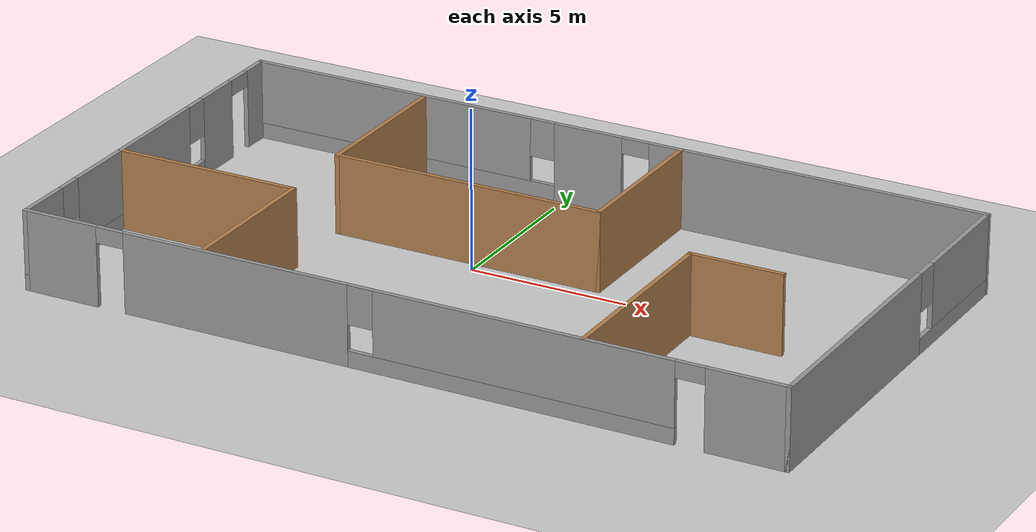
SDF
<sdf version="1.6">
 <world name="default">
  <model name="ground_plane">
   <static>1</static>
   <link name="link">
    <collision name="collision">
     <geometry><plane><normal>0 0 1</normal><size>100 100</size></plane></geometry>
     <surface>
      <contact><collide_bitmask>65535</collide_bitmask></contact>
      <friction><ode><mu>100</mu><mu2>50</mu2></ode></friction>
     </surface>
    </collision>
    <visual name="visual">
     <cast_shadows>0</cast_shadows>
     <geometry><plane><normal>0 0 1</normal><size>100 100</size></plane></geometry>
     <material>
      <script><uri>file://media/materials/scripts/gazebo.material</uri><name>Gazebo/Grey</name></script>
     </material>
    </visual>
   </link>
  </model>
  <model name="building">
   <pose>1.60005 -0.875403 0 0 -0 0</pose>
   <link name="Wall_0">
    <pose>-12.05 0 0 0 0 -1.5708</pose>
    <visual name="Wall_0_Visual_0">
     <pose>-6.00515 0 1.25 0 -0 0</pose>
     <geometry><box><size>0.989706 0.15 2.5</size></box></geometry>
     <material>
      <script><uri>file://media/materials/scripts/gazebo.material</uri><name>Gazebo/Grey</name></script>
      <ambient>0.0823529 0.0823529 0.0823529 1</ambient>
     </material>
     <meta><layer>0</layer></meta>
    </visual>
    <collision name="Wall_0_Collision_0">
     <geometry><box><size>0.989706 0.15 2.5</size></box></geometry>
     <pose>-6.00515 0 1.25 0 -0 0</pose>
    </collision>
    <visual name="Wall_0_Visual_1">
     <pose>-3.80937 0 1.25 0 -0 0</pose>
     <geometry><box><size>1.60184 0.15 2.5</size></box></geometry>
     <material>
      <script><uri>file://media/materials/scripts/gazebo.material</uri><name>Gazebo/Grey</name></script>
      <ambient>0.0823529 0.0823529 0.0823529 1</ambient>
     </material>
     <meta><layer>0</layer></meta>
    </visual>
    <collision name="Wall_0_Collision_1">
     <geometry><box><size>1.60184 0.15 2.5</size></box></geometry>
     <pose>-3.80937 0 1.25 0 -0 0</pose>
    </collision>
    <visual name="Wall_0_Visual_2">
     <pose>1.74578 0 0.25 0 -0 0</pose>
     <geometry><box><size>9.50845 0.15 0.5</size></box></geometry>
     <material>
      <script><uri>file://media/materials/scripts/gazebo.material</uri><name>Gazebo/Grey</name></script>
      <ambient>0.0823529 0.0823529 0.0823529 1</ambient>
     </material>
     <meta><layer>0</layer></meta>
    </visual>
    <collision name="Wall_0_Collision_2">
     <geometry><box><size>9.50845 0.15 0.5</size></box></geometry>
     <pose>1.74578 0 0.25 0 -0 0</pose>
    </collision>
    <visual name="Wall_0_Visual_3">
     <pose>0.81488 0 1.5 0 -0 0</pose>
     <geometry><box><size>6.04666 0.15 2</size></box></geometry>
     <material>
      <script><uri>file://media/materials/scripts/gazebo.material</uri><name>Gazebo/Grey</name></script>
      <ambient>0.0823529 0.0823529 0.0823529 1</ambient>
     </material>
     <meta><layer>0</layer></meta>
    </visual>
    <collision name="Wall_0_Collision_3">
     <geometry><box><size>6.04666 0.15 2</size></box></geometry>
     <pose>0.81488 0 1.5 0 -0 0</pose>
    </collision>
    <visual name="Wall_0_Visual_4">
     <pose>5.56911 0 1.5 0 -0 0</pose>
     <geometry><box><size>1.86179 0.15 2</size></box></geometry>
     <material>
      <script><uri>file://media/materials/scripts/gazebo.material</uri><name>Gazebo/Grey</name></script>
      <ambient>0.0823529 0.0823529 0.0823529 1</ambient>
     </material>
     <meta><layer>0</layer></meta>
    </visual>
    <collision name="Wall_0_Collision_4">
     <geometry><box><size>1.86179 0.15 2</size></box></geometry>
     <pose>5.56911 0 1.5 0 -0 0</pose>
    </collision>
    <visual name="Wall_0_Visual_5">
     <pose>-2.60845 0 1.9 0 -0 0</pose>
     <geometry><box><size>0.8 0.15 1.2</size></box></geometry>
     <material>
      <script><uri>file://media/materials/scripts/gazebo.material</uri><name>Gazebo/Grey</name></script>
      <ambient>0.0823529 0.0823529 0.0823529 1</ambient>
     </material>
     <meta><layer>0</layer></meta>
    </visual>
    <collision name="Wall_0_Collision_5">
     <geometry><box><size>0.8 0.15 1.2</size></box></geometry>
     <pose>-2.60845 0 1.9 0 -0 0</pose>
    </collision>
    <visual name="Wall_0_Visual_6">
     <pose>4.23821 0 1.9 0 -0 0</pose>
     <geometry><box><size>0.8 0.15 1.2</size></box></geometry>
     <material>
      <script><uri>file://media/materials/scripts/gazebo.material</uri><name>Gazebo/Grey</name></script>
      <ambient>0.0823529 0.0823529 0.0823529 1</ambient>
     </material>
     <meta><layer>0</layer></meta>
    </visual>
    <collision name="Wall_0_Collision_6">
     <geometry><box><size>0.8 0.15 1.2</size></box></geometry>
     <pose>4.23821 0 1.9 0 -0 0</pose>
    </collision>
    <visual name="Wall_0_Visual_7">
     <pose>-5.06029 0 2.25 0 -0 0</pose>
     <geometry><box><size>0.9 0.15 0.5</size></box></geometry>
     <material>
      <script><uri>file://media/materials/scripts/gazebo.material</uri><name>Gazebo/Grey</name></script>
      <ambient>0.0823529 0.0823529 0.0823529 1</ambient>
     </material>
     <meta><layer>0</layer></meta>
    </visual>
    <collision name="Wall_0_Collision_7">
     <geometry><box><size>0.9 0.15 0.5</size></box></geometry>
     <pose>-5.06029 0 2.25 0 -0 0</pose>
    </collision>
   </link>
   <link name="Wall_1">
    <pose>0 -6.425 0 0 -0 0</pose>
    <visual name="Wall_1_Visual_0">
     <pose>-10.89 0 1.25 0 -0 0</pose>
     <geometry><box><size>2.47006 0.15 2.5</size></box></geometry>
     <material>
      <script><uri>file://media/materials/scripts/gazebo.material</uri><name>Gazebo/Grey</name></script>
      <ambient>0.0823529 0.0823529 0.0823529 1</ambient>
     </material>
     <meta><layer>0</layer></meta>
    </visual>
    <collision name="Wall_1_Collision_0">
     <geometry><box><size>2.47006 0.15 2.5</size></box></geometry>
     <pose>-10.89 0 1.25 0 -0 0</pose>
    </collision>
    <visual name="Wall_1_Visual_1">
     <pose>-5.09738 0 1.25 0 -0 0</pose>
     <geometry><box><size>7.3151 0.15 2.5</size></box></geometry>
     <material>
      <script><uri>file://media/materials/scripts/gazebo.material</uri><name>Gazebo/Grey</name></script>
      <ambient>0.0823529 0.0823529 0.0823529 1</ambient>
     </material>
     <meta><layer>0</layer></meta>
    </visual>
    <collision name="Wall_1_Collision_1">
     <geometry><box><size>7.3151 0.15 2.5</size></box></geometry>
     <pose>-5.09738 0 1.25 0 -0 0</pose>
    </collision>
    <visual name="Wall_1_Visual_2">
     <pose>10.8563 0 1.25 0 -0 0</pose>
     <geometry><box><size>2.53736 0.15 2.5</size></box></geometry>
     <material>
      <script><uri>file://media/materials/scripts/gazebo.material</uri><name>Gazebo/Grey</name></script>
      <ambient>0.0823529 0.0823529 0.0823529 1</ambient>
     </material>
     <meta><layer>0</layer></meta>
    </visual>
    <collision name="Wall_1_Collision_2">
     <geometry><box><size>2.53736 0.15 2.5</size></box></geometry>
     <pose>10.8563 0 1.25 0 -0 0</pose>
    </collision>
    <visual name="Wall_1_Visual_3">
     <pose>3.6239 0 0.25 0 -0 0</pose>
     <geometry><box><size>10.1275 0.15 0.5</size></box></geometry>
     <material>
      <script><uri>file://media/materials/scripts/gazebo.material</uri><name>Gazebo/Grey</name></script>
      <ambient>0.0823529 0.0823529 0.0823529 1</ambient>
     </material>
     <meta><layer>0</layer></meta>
    </visual>
    <collision name="Wall_1_Collision_3">
     <geometry><box><size>10.1275 0.15 0.5</size></box></geometry>
     <pose>3.6239 0 0.25 0 -0 0</pose>
    </collision>
    <visual name="Wall_1_Visual_4">
     <pose>4.0239 0 1.5 0 -0 0</pose>
     <geometry><box><size>9.32747 0.15 2</size></box></geometry>
     <material>
      <script><uri>file://media/materials/scripts/gazebo.material</uri><name>Gazebo/Grey</name></script>
      <ambient>0.0823529 0.0823529 0.0823529 1</ambient>
     </material>
     <meta><layer>0</layer></meta>
    </visual>
    <collision name="Wall_1_Collision_4">
     <geometry><box><size>9.32747 0.15 2</size></box></geometry>
     <pose>4.0239 0 1.5 0 -0 0</pose>
    </collision>
    <visual name="Wall_1_Visual_5">
     <pose>-1.03983 0 1.9 0 -0 0</pose>
     <geometry><box><size>0.8 0.15 1.2</size></box></geometry>
     <material>
      <script><uri>file://media/materials/scripts/gazebo.material</uri><name>Gazebo/Grey</name></script>
      <ambient>0.0823529 0.0823529 0.0823529 1</ambient>
     </material>
     <meta><layer>0</layer></meta>
    </visual>
    <collision name="Wall_1_Collision_5">
     <geometry><box><size>0.8 0.15 1.2</size></box></geometry>
     <pose>-1.03983 0 1.9 0 -0 0</pose>
    </collision>
    <visual name="Wall_1_Visual_6">
     <pose>-9.20494 0 2.25 0 -0 0</pose>
     <geometry><box><size>0.9 0.15 0.5</size></box></geometry>
     <material>
      <script><uri>file://media/materials/scripts/gazebo.material</uri><name>Gazebo/Grey</name></script>
      <ambient>0.0823529 0.0823529 0.0823529 1</ambient>
     </material>
     <meta><layer>0</layer></meta>
    </visual>
    <collision name="Wall_1_Collision_6">
     <geometry><box><size>0.9 0.15 0.5</size></box></geometry>
     <pose>-9.20494 0 2.25 0 -0 0</pose>
    </collision>
    <visual name="Wall_1_Visual_7">
     <pose>9.13764 0 2.25 0 -0 0</pose>
     <geometry><box><size>0.9 0.15 0.5</size></box></geometry>
     <material>
      <script><uri>file://media/materials/scripts/gazebo.material</uri><name>Gazebo/Grey</name></script>
      <ambient>0.0823529 0.0823529 0.0823529 1</ambient>
     </material>
     <meta><layer>0</layer></meta>
    </visual>
    <collision name="Wall_1_Collision_7">
     <geometry><box><size>0.9 0.15 0.5</size></box></geometry>
     <pose>9.13764 0 2.25 0 -0 0</pose>
    </collision>
   </link>
   <link name="Wall_10">
    <collision name="Wall_10_Collision">
     <geometry><box><size>3 0.15 2.5</size></box></geometry>
     <pose>0 0 1.25 0 -0 0</pose>
    </collision>
    <visual name="Wall_10_Visual">
     <pose>0 0 1.25 0 -0 0</pose>
     <geometry><box><size>3 0.15 2.5</size></box></geometry>
     <material>
      <script><uri>file://media/materials/scripts/gazebo.material</uri><name>Gazebo/Wood</name></script>
      <ambient>1 1 1 1</ambient>
     </material>
     <meta><layer>0</layer></meta>
    </visual>
    <pose>7.30122 -0.039357 0 0 -0 0</pose>
   </link>
   <link name="Wall_12">
    <collision name="Wall_12_Collision">
     <geometry><box><size>6 0.15 2.5</size></box></geometry>
     <pose>0 0 1.25 0 -0 0</pose>
    </collision>
    <visual name="Wall_12_Visual">
     <pose>0 0 1.25 0 -0 0</pose>
     <geometry><box><size>6 0.15 2.5</size></box></geometry>
     <material>
      <script><uri>file://media/materials/scripts/gazebo.material</uri><name>Gazebo/Wood</name></script>
      <ambient>1 1 1 1</ambient>
     </material>
     <meta><layer>0</layer></meta>
    </visual>
    <pose>-9.10187 -1.46254 0 0 -0 0</pose>
   </link>
   <link name="Wall_13">
    <collision name="Wall_13_Collision">
     <geometry><box><size>5 0.15 2.5</size></box></geometry>
     <pose>0 0 1.25 0 -0 0</pose>
    </collision>
    <visual name="Wall_13_Visual">
     <pose>0 0 1.25 0 -0 0</pose>
     <geometry><box><size>5 0.15 2.5</size></box></geometry>
     <material>
      <script><uri>file://media/materials/scripts/gazebo.material</uri><name>Gazebo/Wood</name></script>
      <ambient>1 1 1 1</ambient>
     </material>
     <meta><layer>0</layer></meta>
    </visual>
    <pose>-6.17687 -3.88754 0 0 0 -1.5708</pose>
   </link>
   <link name="Wall_2">
    <pose>12.05 0 0 0 -0 1.5708</pose>
    <visual name="Wall_2_Visual_0">
     <pose>-2.35395 0 1.25 0 -0 0</pose>
     <geometry><box><size>8.2921 0.15 2.5</size></box></geometry>
     <material>
      <script><uri>file://media/materials/scripts/gazebo.material</uri><name>Gazebo/Grey</name></script>
      <ambient>0.0823529 0.0823529 0.0823529 1</ambient>
     </material>
     <meta><layer>0</layer></meta>
    </visual>
    <collision name="Wall_2_Collision_0">
     <geometry><box><size>8.2921 0.15 2.5</size></box></geometry>
     <pose>-2.35395 0 1.25 0 -0 0</pose>
    </collision>
    <visual name="Wall_2_Visual_1">
     <pose>4.14605 0 0.25 0 -0 0</pose>
     <geometry><box><size>4.7079 0.15 0.5</size></box></geometry>
     <material>
      <script><uri>file://media/materials/scripts/gazebo.material</uri><name>Gazebo/Grey</name></script>
      <ambient>0.0823529 0.0823529 0.0823529 1</ambient>
     </material>
     <meta><layer>0</layer></meta>
    </visual>
    <collision name="Wall_2_Collision_1">
     <geometry><box><size>4.7079 0.15 0.5</size></box></geometry>
     <pose>4.14605 0 0.25 0 -0 0</pose>
    </collision>
    <visual name="Wall_2_Visual_2">
     <pose>4.54605 0 1.5 0 -0 0</pose>
     <geometry><box><size>3.9079 0.15 2</size></box></geometry>
     <material>
      <script><uri>file://media/materials/scripts/gazebo.material</uri><name>Gazebo/Grey</name></script>
      <ambient>0.0823529 0.0823529 0.0823529 1</ambient>
     </material>
     <meta><layer>0</layer></meta>
    </visual>
    <collision name="Wall_2_Collision_2">
     <geometry><box><size>3.9079 0.15 2</size></box></geometry>
     <pose>4.54605 0 1.5 0 -0 0</pose>
    </collision>
    <visual name="Wall_2_Visual_3">
     <pose>2.1921 0 1.9 0 -0 0</pose>
     <geometry><box><size>0.8 0.15 1.2</size></box></geometry>
     <material>
      <script><uri>file://media/materials/scripts/gazebo.material</uri><name>Gazebo/Grey</name></script>
      <ambient>0.0823529 0.0823529 0.0823529 1</ambient>
     </material>
     <meta><layer>0</layer></meta>
    </visual>
    <collision name="Wall_2_Collision_3">
     <geometry><box><size>0.8 0.15 1.2</size></box></geometry>
     <pose>2.1921 0 1.9 0 -0 0</pose>
    </collision>
   </link>
   <link name="Wall_3">
    <pose>0 6.425 0 0 -0 3.14159</pose>
    <visual name="Wall_3_Visual_0">
     <pose>-6.70437 0 1.25 0 -0 0</pose>
     <geometry><box><size>10.8413 0.15 2.5</size></box></geometry>
     <material>
      <script><uri>file://media/materials/scripts/gazebo.material</uri><name>Gazebo/Grey</name></script>
      <ambient>0.0823529 0.0823529 0.0823529 1</ambient>
     </material>
     <meta><layer>0</layer></meta>
    </visual>
    <collision name="Wall_3_Collision_0">
     <geometry><box><size>10.8413 0.15 2.5</size></box></geometry>
     <pose>-6.70437 0 1.25 0 -0 0</pose>
    </collision>
    <visual name="Wall_3_Visual_1">
     <pose>0.741002 0 1.25 0 -0 0</pose>
     <geometry><box><size>2.2495 0.15 2.5</size></box></geometry>
     <material>
      <script><uri>file://media/materials/scripts/gazebo.material</uri><name>Gazebo/Grey</name></script>
      <ambient>0.0823529 0.0823529 0.0823529 1</ambient>
     </material>
     <meta><layer>0</layer></meta>
    </visual>
    <collision name="Wall_3_Collision_1">
     <geometry><box><size>2.2495 0.15 2.5</size></box></geometry>
     <pose>0.741002 0 1.25 0 -0 0</pose>
    </collision>
    <visual name="Wall_3_Visual_2">
     <pose>6.99538 0 0.25 0 -0 0</pose>
     <geometry><box><size>10.2592 0.15 0.5</size></box></geometry>
     <material>
      <script><uri>file://media/materials/scripts/gazebo.material</uri><name>Gazebo/Grey</name></script>
      <ambient>0.0823529 0.0823529 0.0823529 1</ambient>
     </material>
     <meta><layer>0</layer></meta>
    </visual>
    <collision name="Wall_3_Collision_2">
     <geometry><box><size>10.2592 0.15 0.5</size></box></geometry>
     <pose>6.99538 0 0.25 0 -0 0</pose>
    </collision>
    <visual name="Wall_3_Visual_3">
     <pose>7.39538 0 1.5 0 -0 0</pose>
     <geometry><box><size>9.45925 0.15 2</size></box></geometry>
     <material>
      <script><uri>file://media/materials/scripts/gazebo.material</uri><name>Gazebo/Grey</name></script>
      <ambient>0.0823529 0.0823529 0.0823529 1</ambient>
     </material>
     <meta><layer>0</layer></meta>
    </visual>
    <collision name="Wall_3_Collision_3">
     <geometry><box><size>9.45925 0.15 2</size></box></geometry>
     <pose>7.39538 0 1.5 0 -0 0</pose>
    </collision>
    <visual name="Wall_3_Visual_4">
     <pose>2.26575 0 1.9 0 -0 0</pose>
     <geometry><box><size>0.8 0.15 1.2</size></box></geometry>
     <material>
      <script><uri>file://media/materials/scripts/gazebo.material</uri><name>Gazebo/Grey</name></script>
      <ambient>0.0823529 0.0823529 0.0823529 1</ambient>
     </material>
     <meta><layer>0</layer></meta>
    </visual>
    <collision name="Wall_3_Collision_4">
     <geometry><box><size>0.8 0.15 1.2</size></box></geometry>
     <pose>2.26575 0 1.9 0 -0 0</pose>
    </collision>
    <visual name="Wall_3_Visual_5">
     <pose>-0.833748 0 2.25 0 -0 0</pose>
     <geometry><box><size>0.9 0.15 0.5</size></box></geometry>
     <material>
      <script><uri>file://media/materials/scripts/gazebo.material</uri><name>Gazebo/Grey</name></script>
      <ambient>0.0823529 0.0823529 0.0823529 1</ambient>
     </material>
     <meta><layer>0</layer></meta>
    </visual>
    <collision name="Wall_3_Collision_5">
     <geometry><box><size>0.9 0.15 0.5</size></box></geometry>
     <pose>-0.833748 0 2.25 0 -0 0</pose>
    </collision>
   </link>
   <link name="Wall_5">
    <collision name="Wall_5_Collision">
     <geometry><box><size>5.25 0.15 2.5</size></box></geometry>
     <pose>0 0 1.25 0 -0 0</pose>
    </collision>
    <visual name="Wall_5_Visual">
     <pose>0 0 1.25 0 -0 0</pose>
     <geometry><box><size>5.25 0.15 2.5</size></box></geometry>
     <material>
      <script><uri>file://media/materials/scripts/gazebo.material</uri><name>Gazebo/Wood</name></script>
      <ambient>1 1 1 1</ambient>
     </material>
     <meta><layer>0</layer></meta>
    </visual>
    <pose>-6.29048 3.82874 0 0 0 -1.5708</pose>
   </link>
   <link name="Wall_6">
    <collision name="Wall_6_Collision">
     <geometry><box><size>8.75 0.15 2.5</size></box></geometry>
     <pose>0 0 1.25 0 -0 0</pose>
    </collision>
    <visual name="Wall_6_Visual">
     <pose>0 0 1.25 0 -0 0</pose>
     <geometry><box><size>8.75 0.15 2.5</size></box></geometry>
     <material>
      <script><uri>file://media/materials/scripts/gazebo.material</uri><name>Gazebo/Wood</name></script>
      <ambient>1 1 1 1</ambient>
     </material>
     <meta><layer>0</layer></meta>
    </visual>
    <pose>-1.99048 1.27874 0 0 -0 0</pose>
   </link>
   <link name="Wall_7">
    <collision name="Wall_7_Collision">
     <geometry><box><size>5.25 0.15 2.5</size></box></geometry>
     <pose>0 0 1.25 0 -0 0</pose>
    </collision>
    <visual name="Wall_7_Visual">
     <pose>0 0 1.25 0 -0 0</pose>
     <geometry><box><size>5.25 0.15 2.5</size></box></geometry>
     <material>
      <script><uri>file://media/materials/scripts/gazebo.material</uri><name>Gazebo/Wood</name></script>
      <ambient>1 1 1 1</ambient>
     </material>
     <meta><layer>0</layer></meta>
    </visual>
    <pose>2.30952 3.82874 0 0 -0 1.5708</pose>
   </link>
   <link name="Wall_9">
    <collision name="Wall_9_Collision">
     <geometry><box><size>6.5 0.15 2.5</size></box></geometry>
     <pose>0 0 1.25 0 -0 0</pose>
    </collision>
    <visual name="Wall_9_Visual">
     <pose>0 0 1.25 0 -0 0</pose>
     <geometry><box><size>6.5 0.15 2.5</size></box></geometry>
     <material>
      <script><uri>file://media/materials/scripts/gazebo.material</uri><name>Gazebo/Wood</name></script>
      <ambient>1 1 1 1</ambient>
     </material>
     <meta><layer>0</layer></meta>
    </visual>
    <pose>5.87622 -3.21436 0 0 -0 1.5708</pose>
   </link>
   <static>1</static>
  </model>
  <model name="Robot">
   <link name="link_0">
    <pose>-0.04 0.011996 0.141203 0 -0 0</pose>
    <inertial>
     <mass>1</mass>
     <inertia>
      <ixx>0.166667</ixx>
      <ixy>0</ixy>
      <ixz>0</ixz>
      <iyy>0.166667</iyy>
      <iyz>0</iyz>
      <izz>0.166667</izz>
     </inertia>
    </inertial>
    <visual name="visual">
     <geometry><box><size>1.2 0.5 0.15</size></box></geometry>
     <material>
      <lighting>1</lighting>
      <script><uri>file://media/materials/scripts/gazebo.material</uri><name>Gazebo/Grey</name></script>
      <shader type="pixel"><normal_map>__default__</normal_map></shader>
      <ambient>0.3 0.3 0.3 1</ambient>
      <diffuse>0.7 0.7 0.7 1</diffuse>
      <specular>0.01 0.01 0.01 1</specular>
      <emissive>0 0 0 1</emissive>
     </material>
    </visual>
    <collision name="collision">
     <geometry><box><size>1.2 0.5 0.2</size></box></geometry>
     <surface>
      <friction>
       <ode><mu>1</mu><mu2>1</mu2><fdir1>0 0 0</fdir1><slip1>0</slip1><slip2>0</slip2></ode>
       <torsional>
        <coefficient>1</coefficient>
        <patch_radius>0</patch_radius>
        <surface_radius>0</surface_radius>
        <use_patch_radius>1</use_patch_radius>
        <ode><slip>0</slip></ode>
       </torsional>
      </friction>
      <bounce><restitution_coefficient>0</restitution_coefficient><threshold>1e+06</threshold></bounce>
      <contact>
       <collide_without_contact>0</collide_without_contact>
       <collide_without_contact_bitmask>1</collide_without_contact_bitmask>
       <collide_bitmask>1</collide_bitmask>
       <ode>
        <soft_cfm>0</soft_cfm>
        <soft_erp>0.2</soft_erp>
        <kp>1e+13</kp>
        <kd>1</kd>
        <max_vel>0.01</max_vel>
        <min_depth>0</min_depth>
       </ode>
       <bullet>
        <split_impulse>1</split_impulse>
        <split_impulse_penetration_threshold>-0.01</split_impulse_penetration_threshold>
        <soft_cfm>0</soft_cfm>
        <soft_erp>0.2</soft_erp>
        <kp>1e+13</kp>
        <kd>1</kd>
       </bullet>
      </contact>
     </surface>
    </collision>
   </link>
   <link name="link_1">
    <pose>-0.339998 -0.378004 -0.035301 0 -0 0</pose>
    <inertial>
     <mass>1</mass>
     <inertia><ixx>0.145833</ixx><ixy>0</ixy><ixz>0</ixz><iyy>0.145833</iyy><iyz>0</iyz><izz>0.125</izz></inertia>
    </inertial>
    <visual name="visual">
     <pose>0 0 0.2 1.5707 -0 0</pose>
     <geometry><cylinder><radius>0.2</radius><length>0.16</length></cylinder></geometry>
     <material>
      <lighting>1</lighting>
      <script><uri>file://media/materials/scripts/gazebo.material</uri><name>Gazebo/Grey</name></script>
      <shader type="pixel"><normal_map>__default__</normal_map></shader>
      <ambient>0.3 0.3 0.3 1</ambient>
      <diffuse>0.7 0.7 0.7 1</diffuse>
      <specular>0.01 0.01 0.01 1</specular>
      <emissive>0 0 0 1</emissive>
     </material>
    </visual>
    <collision name="collision">
     <pose>0 0 0.2 1.5707 -0 0</pose>
     <geometry><cylinder><radius>0.2</radius><length>0.16</length></cylinder></geometry>
     <surface>
      <friction>
       <ode><mu>1</mu><mu2>1</mu2><fdir1>0 0 0</fdir1><slip1>0</slip1><slip2>0</slip2></ode>
       <torsional>
        <coefficient>1</coefficient>
        <patch_radius>0</patch_radius>
        <surface_radius>0</surface_radius>
        <use_patch_radius>1</use_patch_radius>
        <ode><slip>0</slip></ode>
       </torsional>
      </friction>
      <bounce><restitution_coefficient>0</restitution_coefficient><threshold>1e+06</threshold></bounce>
      <contact>
       <collide_without_contact>0</collide_without_contact>
       <collide_without_contact_bitmask>1</collide_without_contact_bitmask>
       <collide_bitmask>1</collide_bitmask>
       <ode>
        <soft_cfm>0</soft_cfm>
        <soft_erp>0.2</soft_erp>
        <kp>1e+13</kp>
        <kd>1</kd>
        <max_vel>0.01</max_vel>
        <min_depth>0</min_depth>
       </ode>
       <bullet>
        <split_impulse>1</split_impulse>
        <split_impulse_penetration_threshold>-0.01</split_impulse_penetration_threshold>
        <soft_cfm>0</soft_cfm>
        <soft_erp>0.2</soft_erp>
        <kp>1e+13</kp>
        <kd>1</kd>
       </bullet>
      </contact>
     </surface>
    </collision>
   </link>
   <link name="link_1_clone">
    <pose>-0.339998 0.342015 -0.035301 0 -0 0</pose>
    <inertial>
     <mass>1</mass>
     <inertia><ixx>0.145833</ixx><ixy>0</ixy><ixz>0</ixz><iyy>0.145833</iyy><iyz>0</iyz><izz>0.125</izz></inertia>
    </inertial>
    <visual name="visual">
     <pose>0 0 0.2 1.5707 -0 0</pose>
     <geometry><cylinder><radius>0.2</radius><length>0.16</length></cylinder></geometry>
     <material>
      <lighting>1</lighting>
      <script><uri>file://media/materials/scripts/gazebo.material</uri><name>Gazebo/Grey</name></script>
      <shader type="pixel"><normal_map>__default__</normal_map></shader>
      <ambient>0.3 0.3 0.3 1</ambient>
      <diffuse>0.7 0.7 0.7 1</diffuse>
      <specular>0.01 0.01 0.01 1</specular>
      <emissive>0 0 0 1</emissive>
     </material>
    </visual>
    <collision name="collision">
     <pose>0 0 0.2 1.5707 -0 0</pose>
     <geometry><cylinder><radius>0.2</radius><length>0.16</length></cylinder></geometry>
     <surface>
      <friction>
       <ode><mu>1</mu><mu2>1</mu2><fdir1>0 0 0</fdir1><slip1>0</slip1><slip2>0</slip2></ode>
       <torsional>
        <coefficient>1</coefficient>
        <patch_radius>0</patch_radius>
        <surface_radius>0</surface_radius>
        <use_patch_radius>1</use_patch_radius>
        <ode><slip>0</slip></ode>
       </torsional>
      </friction>
      <bounce><restitution_coefficient>0</restitution_coefficient><threshold>1e+06</threshold></bounce>
      <contact>
       <collide_without_contact>0</collide_without_contact>
       <collide_without_contact_bitmask>1</collide_without_contact_bitmask>
       <collide_bitmask>1</collide_bitmask>
       <ode>
        <soft_cfm>0</soft_cfm>
        <soft_erp>0.2</soft_erp>
        <kp>1e+13</kp>
        <kd>1</kd>
        <max_vel>0.01</max_vel>
        <min_depth>0</min_depth>
       </ode>
       <bullet>
        <split_impulse>1</split_impulse>
        <split_impulse_penetration_threshold>-0.01</split_impulse_penetration_threshold>
        <soft_cfm>0</soft_cfm>
        <soft_erp>0.2</soft_erp>
        <kp>1e+13</kp>
        <kd>1</kd>
       </bullet>
      </contact>
     </surface>
    </collision>
   </link>
   <link name="link_1_clone_0">
    <pose>0.36 0.342015 -0.035301 0 -0 0</pose>
    <inertial>
     <mass>1</mass>
     <inertia><ixx>0.145833</ixx><ixy>0</ixy><ixz>0</ixz><iyy>0.145833</iyy><iyz>0</iyz><izz>0.125</izz></inertia>
    </inertial>
    <visual name="visual">
     <pose>0 0 0.2 1.5707 -0 0</pose>
     <geometry><cylinder><radius>0.2</radius><length>0.16</length></cylinder></geometry>
     <material>
      <lighting>1</lighting>
      <script><uri>file://media/materials/scripts/gazebo.material</uri><name>Gazebo/Grey</name></script>
      <shader type="pixel"><normal_map>__default__</normal_map></shader>
      <ambient>0.3 0.3 0.3 1</ambient>
      <diffuse>0.7 0.7 0.7 1</diffuse>
      <specular>0.01 0.01 0.01 1</specular>
      <emissive>0 0 0 1</emissive>
     </material>
    </visual>
    <collision name="collision">
     <pose>0 0 0.2 1.5707 -0 0</pose>
     <geometry><cylinder><radius>0.2</radius><length>0.16</length></cylinder></geometry>
     <surface>
      <friction>
       <ode><mu>1</mu><mu2>1</mu2><fdir1>0 0 0</fdir1><slip1>0</slip1><slip2>0</slip2></ode>
       <torsional>
        <coefficient>1</coefficient>
        <patch_radius>0</patch_radius>
        <surface_radius>0</surface_radius>
        <use_patch_radius>1</use_patch_radius>
        <ode><slip>0</slip></ode>
       </torsional>
      </friction>
      <bounce><restitution_coefficient>0</restitution_coefficient><threshold>1e+06</threshold></bounce>
      <contact>
       <collide_without_contact>0</collide_without_contact>
       <collide_without_contact_bitmask>1</collide_without_contact_bitmask>
       <collide_bitmask>1</collide_bitmask>
       <ode>
        <soft_cfm>0</soft_cfm>
        <soft_erp>0.2</soft_erp>
        <kp>1e+13</kp>
        <kd>1</kd>
        <max_vel>0.01</max_vel>
        <min_depth>0</min_depth>
       </ode>
       <bullet>
        <split_impulse>1</split_impulse>
        <split_impulse_penetration_threshold>-0.01</split_impulse_penetration_threshold>
        <soft_cfm>0</soft_cfm>
        <soft_erp>0.2</soft_erp>
        <kp>1e+13</kp>
        <kd>1</kd>
       </bullet>
      </contact>
     </surface>
    </collision>
   </link>
   <link name="link_1_clone_1">
    <pose>0.36 -0.318023 -0.035301 0 -0 0</pose>
    <inertial>
     <mass>1</mass>
     <inertia><ixx>0.145833</ixx><ixy>0</ixy><ixz>0</ixz><iyy>0.145833</iyy><iyz>0</iyz><izz>0.125</izz></inertia>
    </inertial>
    <visual name="visual">
     <pose>0 0 0.2 1.5707 -0 0</pose>
     <geometry><cylinder><radius>0.2</radius><length>0.16</length></cylinder></geometry>
     <material>
      <lighting>1</lighting>
      <script><uri>file://media/materials/scripts/gazebo.material</uri><name>Gazebo/Grey</name></script>
      <shader type="pixel"><normal_map>__default__</normal_map></shader>
      <ambient>0.3 0.3 0.3 1</ambient>
      <diffuse>0.7 0.7 0.7 1</diffuse>
      <specular>0.01 0.01 0.01 1</specular>
      <emissive>0 0 0 1</emissive>
     </material>
    </visual>
    <collision name="collision">
     <pose>0 0 0.2 1.5707 -0 0</pose>
     <geometry><cylinder><radius>0.2</radius><length>0.16</length></cylinder></geometry>
     <surface>
      <friction>
       <ode><mu>1</mu><mu2>1</mu2><fdir1>0 0 0</fdir1><slip1>0</slip1><slip2>0</slip2></ode>
       <torsional>
        <coefficient>1</coefficient>
        <patch_radius>0</patch_radius>
        <surface_radius>0</surface_radius>
        <use_patch_radius>1</use_patch_radius>
        <ode><slip>0</slip></ode>
       </torsional>
      </friction>
      <bounce><restitution_coefficient>0</restitution_coefficient><threshold>1e+06</threshold></bounce>
      <contact>
       <collide_without_contact>0</collide_without_contact>
       <collide_without_contact_bitmask>1</collide_without_contact_bitmask>
       <collide_bitmask>1</collide_bitmask>
       <ode>
        <soft_cfm>0</soft_cfm>
        <soft_erp>0.2</soft_erp>
        <kp>1e+13</kp>
        <kd>1</kd>
        <max_vel>0.01</max_vel>
        <min_depth>0</min_depth>
       </ode>
       <bullet>
        <split_impulse>1</split_impulse>
        <split_impulse_penetration_threshold>-0.01</split_impulse_penetration_threshold>
        <soft_cfm>0</soft_cfm>
        <soft_erp>0.2</soft_erp>
        <kp>1e+13</kp>
        <kd>1</kd>
       </bullet>
      </contact>
     </surface>
    </collision>
   </link>
   <joint name="link_0_JOINT_2" type="revolute">
    <parent>link_0</parent>
    <child>link_1</child>
    <axis>
     <xyz>0 0 1</xyz>
     <use_parent_model_frame>0</use_parent_model_frame>
     <limit>
      <lower>-1.79769e+308</lower>
      <upper>1.79769e+308</upper>
      <effort>-1</effort>
      <velocity>-1</velocity>
     </limit>
     <dynamics>
      <spring_reference>0</spring_reference>
      <spring_stiffness>0</spring_stiffness>
      <damping>0</damping>
     </dynamics>
    </axis>
    <physics>
     <ode><limit><cfm>0</cfm><erp>0.2</erp></limit><suspension><cfm>0</cfm><erp>0.2</erp></suspension></ode>
    </physics>
   </joint>
   <joint name="link_0_JOINT_3" type="revolute">
    <parent>link_0</parent>
    <child>link_1_clone</child>
    <axis>
     <xyz>0 0 1</xyz>
     <use_parent_model_frame>0</use_parent_model_frame>
     <limit>
      <lower>-1.79769e+308</lower>
      <upper>1.79769e+308</upper>
      <effort>-1</effort>
      <velocity>-1</velocity>
     </limit>
     <dynamics>
      <spring_reference>0</spring_reference>
      <spring_stiffness>0</spring_stiffness>
      <damping>0</damping>
     </dynamics>
    </axis>
    <physics>
     <ode><limit><cfm>0</cfm><erp>0.2</erp></limit><suspension><cfm>0</cfm><erp>0.2</erp></suspension></ode>
    </physics>
   </joint>
   <joint name="link_0_JOINT_5" type="revolute">
    <parent>link_0</parent>
    <child>link_1_clone_1</child>
    <axis>
     <xyz>0 0 1</xyz>
     <use_parent_model_frame>0</use_parent_model_frame>
     <limit>
      <lower>-1.79769e+308</lower>
      <upper>1.79769e+308</upper>
      <effort>-1</effort>
      <velocity>-1</velocity>
     </limit>
     <dynamics>
      <spring_reference>0</spring_reference>
      <spring_stiffness>0</spring_stiffness>
      <damping>0</damping>
     </dynamics>
    </axis>
    <physics>
     <ode><limit><cfm>0</cfm><erp>0.2</erp></limit><suspension><cfm>0</cfm><erp>0.2</erp></suspension></ode>
    </physics>
   </joint>
   <joint name="link_0_JOINT_7" type="revolute">
    <parent>link_0</parent>
    <child>link_1_clone_0</child>
    <axis>
     <xyz>1 0 0</xyz>
     <use_parent_model_frame>0</use_parent_model_frame>
     <limit>
      <lower>-1.79769e+308</lower>
      <upper>1.79769e+308</upper>
      <effort>-1</effort>
      <velocity>-1</velocity>
     </limit>
     <dynamics>
      <spring_reference>0</spring_reference>
      <spring_stiffness>0</spring_stiffness>
      <damping>0</damping>
     </dynamics>
    </axis>
    <physics>
     <ode><limit><cfm>0</cfm><erp>0.2</erp></limit><suspension><cfm>0</cfm><erp>0.2</erp></suspension></ode>
    </physics>
   </joint>
   <static>0</static>
   <pose>-7.72198 -0.753913 0 0 -0 0</pose>
  </model>
 </world>
</sdf>
